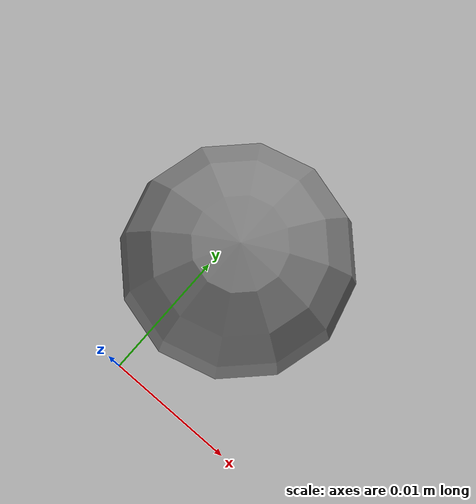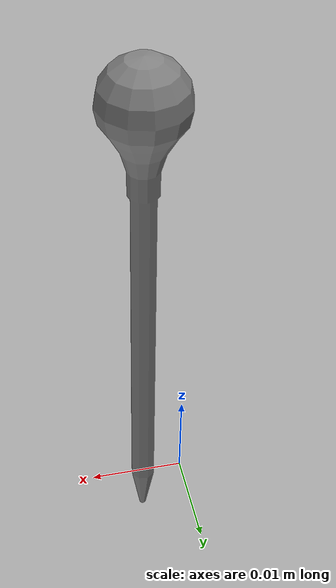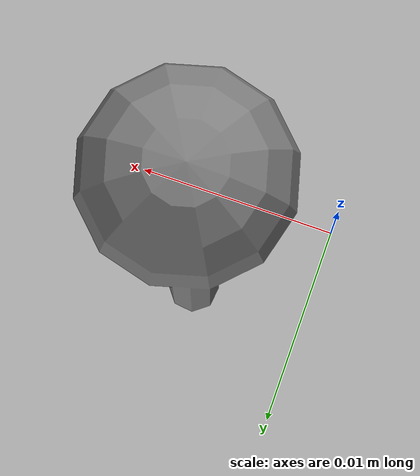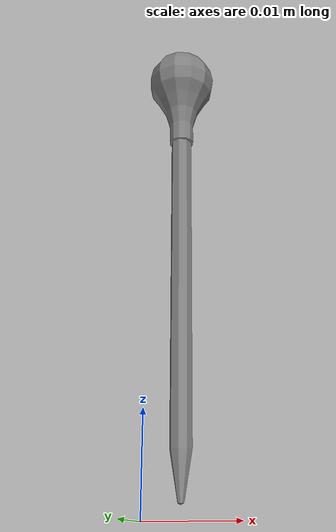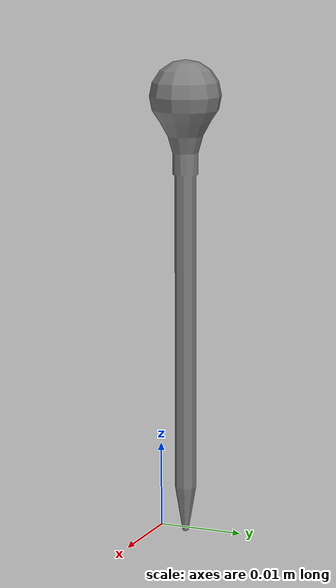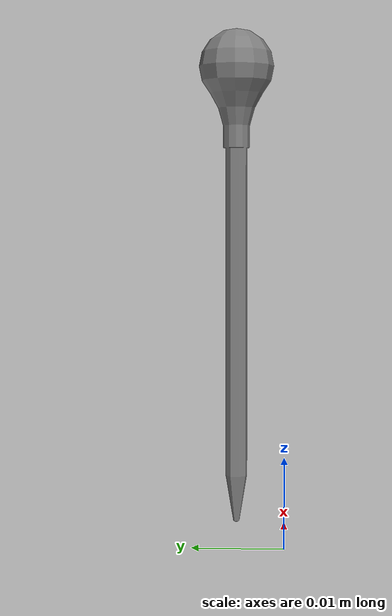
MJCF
<mujoco model="Dropper">
  <!-- XML 位于 model/object，需要返回到 assets -->
  <compiler angle="radian" meshdir="../../assets"/>

  <option gravity="0 0 -9.81"/>

  <asset>
    <!-- 主 mesh -->
    <mesh
      name="dropper_mesh"
      file="Dropper/base.obj"
      scale="0.3 0.3 0.3"/>
  </asset>

  <worldbody>
    <body name="dropper" quat="0.7071 0.7071 0 0">

      <!-- 视觉几何（不参与碰撞） -->
      <geom
        name="dropper_visual"
        type="mesh"
        mesh="dropper_mesh"
        contype="0"
        conaffinity="0"/>

      <!-- 碰撞几何（用于交互 / 放置） -->
      <geom
        name="dropper_collision"
        type="mesh"
        mesh="dropper_mesh"
        rgba="0.8 0.8 0.8 1"
        contype="1"
        conaffinity="1"
        density="2500"
        friction="1.0 0.3 0.001"/>

    </body>
  </worldbody>
</mujoco>
